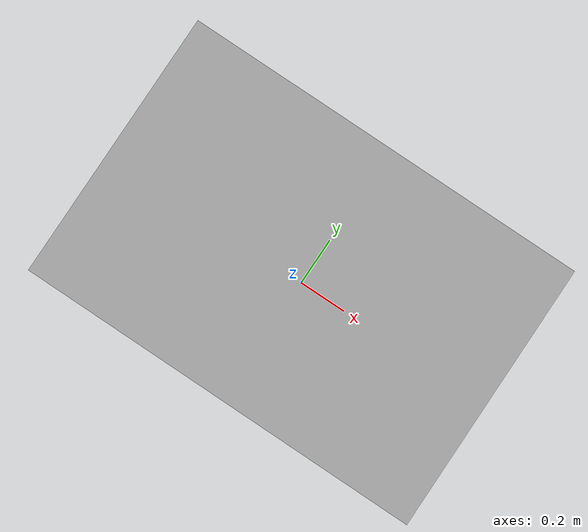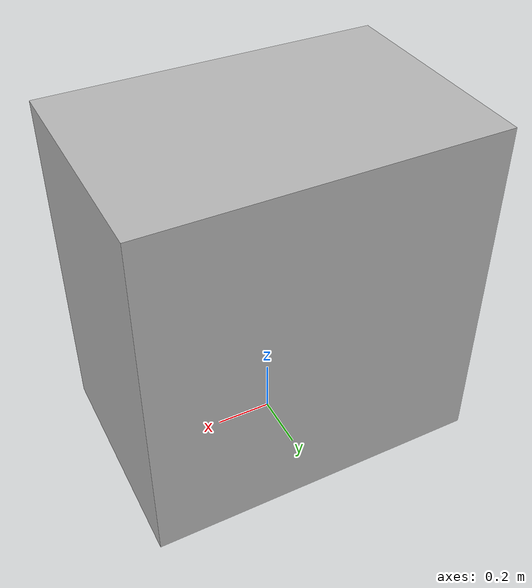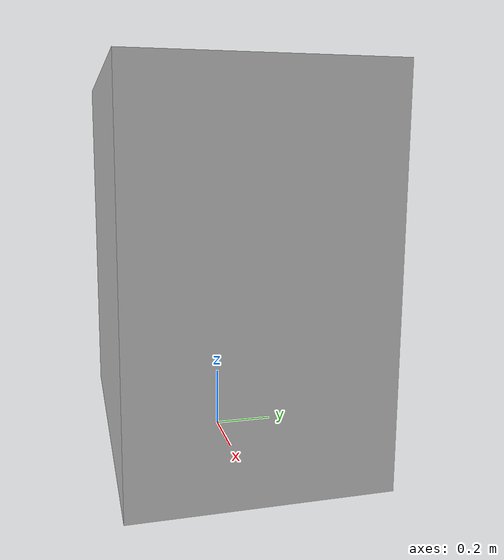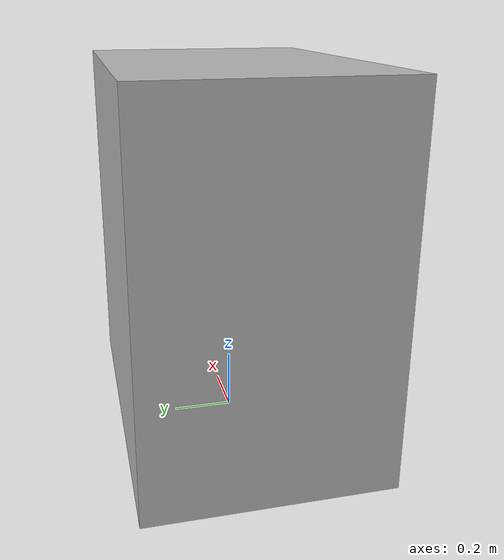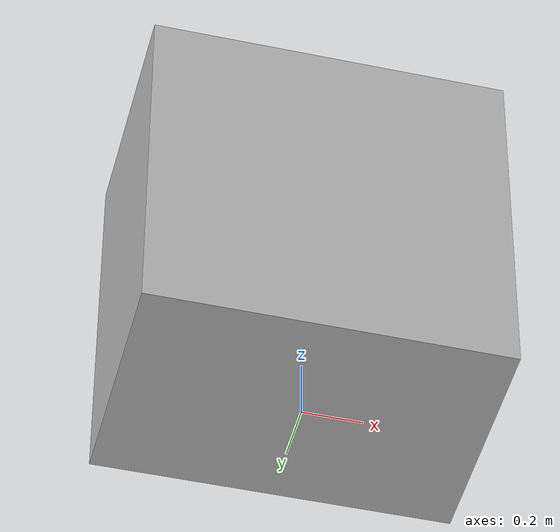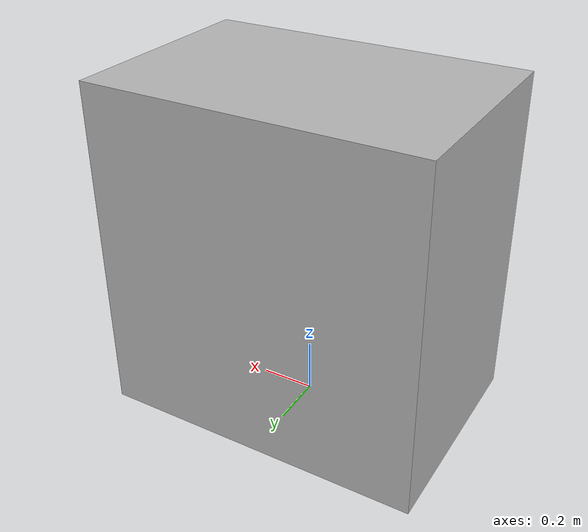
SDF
<?xml version="1.0" ?>
<sdf version="1.5">
  <model name="Big box 4">
    <pose>0 0 0.625  0 0 0</pose>
    <static>false</static>
    <link name="link">
      <inertial>
        <mass>40.0</mass>
        <inertia>
          <ixx>1</ixx>
          <ixy>0</ixy>
          <ixz>0</ixz>
          <iyy>1</iyy>
          <iyz>0</iyz>
          <izz>1</izz>
        </inertia>
      </inertial>

      <collision name="collision">
        <geometry>
          <box>
              <size>1.20 0.80 1.25</size>
          </box>
        </geometry>
	<surface>
          <contact>
            <ode>
              <max_vel>0.1</max_vel>
              <min_depth>0.001</min_depth>
            </ode>
          </contact>
        </surface>
      </collision>
      <visual name="visual">
        <geometry>
          <mesh>
            <uri>model://big_box4/meshes/big_box.dae</uri>
          </mesh>
	</geometry>
      </visual>
    </link>
  </model>
</sdf>
